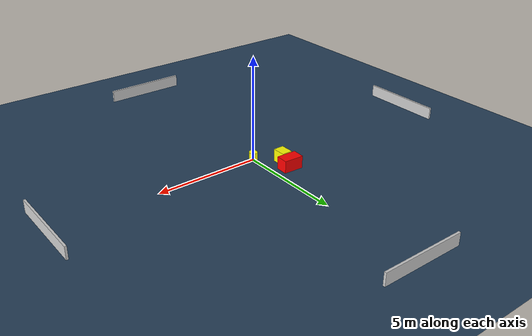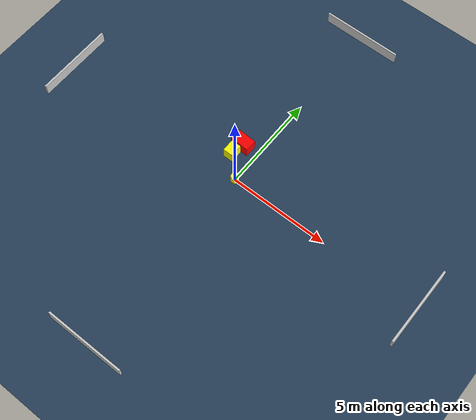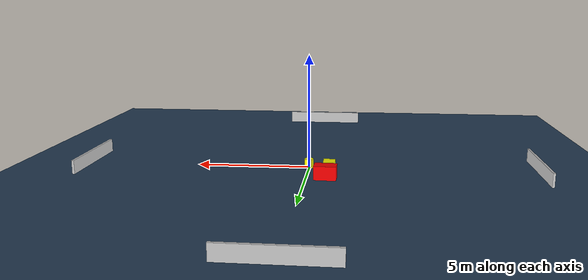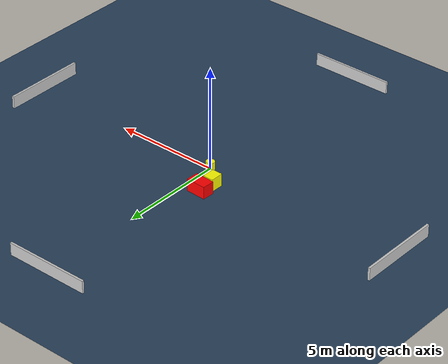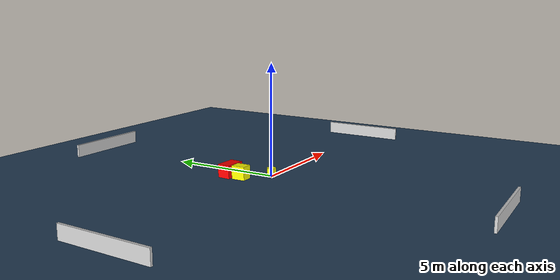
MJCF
<?xml version="1.0" ?>
<mujoco model="generated_environment">
  <option timestep="0.01" integrator="RK4" cone="elliptic"/>
  <default>
    <geom density="1"/>
  </default>
  <asset>
    <texture builtin="gradient" height="3072" name="skybox" rgb1="0.3 0.5 0.7" rgb2="0 0 0" type="skybox" width="512"/>
    <texture builtin="checker" height="300" name="groundplane" rgb1="0.2 0.3 0.4" rgb2="0.1 0.2 0.3" type="2d" width="300"/>
    <material name="groundplane" reflectance="0.2" texrepeat="5 5" texture="groundplane"/>
  </asset>
  <worldbody>
    <light dir="0 0 -1" directional="true" pos="0 0 1.5"/>
    <geom condim="3" friction="0.5 0.005 0.001" material="groundplane" name="floor" pos="0 0 0" size="0 0 0.05" type="plane"/>
    <body name="walls">
      <geom name="wall_1" condim="4" pos="-10.0 0.0 0.3" rgba="0.800000011920929 0.800000011920929 0.800000011920929 1.0" size="0.05 2.0 0.3" type="box"/>
      <geom name="wall_2" condim="4" pos="10.0 0.0 0.3" rgba="0.800000011920929 0.800000011920929 0.800000011920929 1.0" size="0.05 2.0 0.3" type="box"/>
      <geom name="wall_3" condim="4" pos="0.0 -10.0 0.3" rgba="0.800000011920929 0.800000011920929 0.800000011920929 1.0" size="2.0 0.05 0.3" type="box"/>
      <geom name="wall_4" condim="4" pos="0.0 10.0 0.3" rgba="0.800000011920929 0.800000011920929 0.800000011920929 1.0" size="2.0 0.05 0.3" type="box"/>
    </body>
    <body name="robot">
      <joint name="joint_x" type="slide" pos="0 0 0" axis="1 0 0"/>
      <joint name="joint_y" type="slide" pos="0 0 0" axis="0 1 0"/>
      <geom name="robot" type="cylinder" pos="0.0 0.0 0.2" size="0.2 0.2 0.0" mass="5.0" friction="1.0 0.005 0.0001" condim="4" rgba="1.0 1.0 0.0 1.0"/>
    </body>
    <body name="obstacle_1_movable">
      <geom name="obstacle_1_movable" condim="4" pos="-0.9555302576061381 0.973168401444191 0.3" euler="0 0 90.50446415393492" friction="0.0 0.005 0.001" rgba="1.0 1.0 0.0 1.0" size="0.3130099323393399 0.25104504795520366 0.3" type="box" mass="0.1"/>
      <joint type="free"/>
    </body>
    <body name="obstacle_2_static">
      <geom name="obstacle_2_static" condim="4" pos="-0.8340427811354627 1.6324853745979917 0.3" euler="0 0 87.27602858740555" friction="0.0 0.005 0.001" rgba="1.0 0.0 0.0 1.0" size="0.29190825045826413 0.47641990884209034 0.3" type="box"/>
    </body>
  </worldbody>
  <actuator>
    <motor name="actuator_x" joint="joint_x" gear="1" ctrlrange="-1 1"/>
    <motor name="actuator_y" joint="joint_y" gear="1" ctrlrange="-1 1"/>
  </actuator>
</mujoco>
